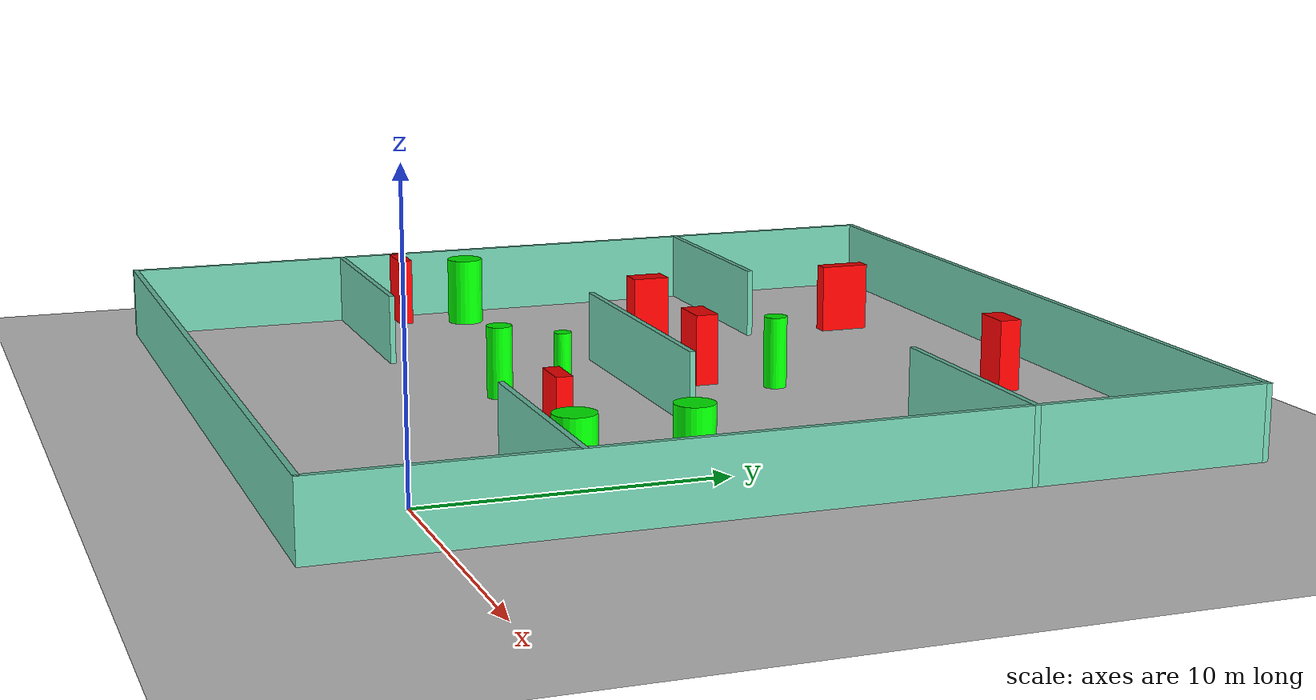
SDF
<sdf version="1.7">
 <world name="default">
  <light name="sun" type="directional">
   <pose>0 0 10 0 -0 0</pose>
   <diffuse>0.8 0.8 0.8 1</diffuse>
   <specular>0.2 0.2 0.2 1</specular>
   <attenuation>
    <range>1000</range>
    <constant>0.9</constant>
    <linear>0.01</linear>
    <quadratic>0.001</quadratic>
   </attenuation>
   <direction>-0.5 0.1 -0.9</direction>
   <spot><inner_angle>0</inner_angle><outer_angle>0</outer_angle><falloff>0</falloff></spot>
  </light>
  <model name="ground_plane">
   <static>1</static>
   <link name="link">
    <collision name="collision">
     <geometry><plane><normal>0 0 1</normal><size>100 100</size></plane></geometry>
     <surface>
      <contact><collide_bitmask>65535</collide_bitmask></contact>
      <friction><ode><mu>100</mu><mu2>50</mu2></ode></friction>
     </surface>
    </collision>
    <visual name="visual">
     <cast_shadows>0</cast_shadows>
     <geometry><plane><normal>0 0 1</normal><size>100 100</size></plane></geometry>
     <material>
      <script><uri>file://media/materials/scripts/gazebo.material</uri><name>Gazebo/Grey</name></script>
     </material>
    </visual>
   </link>
  </model>
  <gravity>0 0 -9.8</gravity>
  <magnetic_field>6e-06 2.3e-05 -4.2e-05</magnetic_field>
  <atmosphere type="adiabatic"/>
  <physics type="ode">
   <max_step_size>0.001</max_step_size>
   <real_time_factor>1</real_time_factor>
   <real_time_update_rate>1000</real_time_update_rate>
  </physics>
  <scene><ambient>0.4 0.4 0.4 1</ambient><background>0.7 0.7 0.7 1</background><shadows>1</shadows></scene>
  <spherical_coordinates>
   <surface_model>EARTH_WGS84</surface_model>
   <latitude_deg>0</latitude_deg>
   <longitude_deg>0</longitude_deg>
   <elevation>0</elevation>
   <heading_deg>0</heading_deg>
  </spherical_coordinates>
  <model name="my_base_walls">
   <link name="Wall_10">
    <collision name="Wall_10_Collision">
     <geometry><box><size>8.2 0.2 2.5</size></box></geometry>
     <pose>0 0 1.25 0 -0 0</pose>
    </collision>
    <visual name="Wall_10_Visual">
     <pose>0 0 1.25 0 -0 0</pose>
     <geometry><box><size>8.2 0.2 2.5</size></box></geometry>
     <material>
      <script><uri>file://media/materials/scripts/gazebo.material</uri><name>Gazebo/Grey</name></script>
      <ambient>0.435294 0.796078 0.67451 1</ambient>
     </material>
     <meta><layer>0</layer></meta>
    </visual>
    <pose>-11 -7 0 0 -0 0</pose>
   </link>
   <link name="Wall_12">
    <collision name="Wall_12_Collision">
     <geometry><box><size>8.2 0.2 2.5</size></box></geometry>
     <pose>0 0 1.25 0 -0 0</pose>
    </collision>
    <visual name="Wall_12_Visual">
     <pose>0 0 1.25 0 -0 0</pose>
     <geometry><box><size>8.2 0.2 2.5</size></box></geometry>
     <material>
      <script><uri>file://media/materials/scripts/gazebo.material</uri><name>Gazebo/Grey</name></script>
      <ambient>0.435294 0.796078 0.67451 1</ambient>
     </material>
     <meta><layer>0</layer></meta>
    </visual>
    <pose>-11 7 0 0 -0 0</pose>
   </link>
   <link name="Wall_14">
    <collision name="Wall_14_Collision">
     <geometry><box><size>8.2 0.2 2.5</size></box></geometry>
     <pose>0 0 1.25 0 -0 0</pose>
    </collision>
    <visual name="Wall_14_Visual">
     <pose>0 0 1.25 0 -0 0</pose>
     <geometry><box><size>8.2 0.2 2.5</size></box></geometry>
     <material>
      <script><uri>file://media/materials/scripts/gazebo.material</uri><name>Gazebo/Grey</name></script>
      <ambient>0.435294 0.796078 0.67451 1</ambient>
     </material>
     <meta><layer>0</layer></meta>
    </visual>
    <pose>11 7 0 0 -0 3.14159</pose>
   </link>
   <link name="Wall_16">
    <collision name="Wall_16_Collision">
     <geometry><box><size>10.2 0.2 2.5</size></box></geometry>
     <pose>0 0 1.25 0 -0 0</pose>
    </collision>
    <visual name="Wall_16_Visual">
     <pose>0 0 1.25 0 -0 0</pose>
     <geometry><box><size>10.2 0.2 2.5</size></box></geometry>
     <material>
      <script><uri>file://media/materials/scripts/gazebo.material</uri><name>Gazebo/Grey</name></script>
      <ambient>0.435294 0.796078 0.67451 1</ambient>
     </material>
     <meta><layer>0</layer></meta>
    </visual>
    <pose>0 0 0 0 -0 3.14159</pose>
   </link>
   <link name="Wall_2">
    <collision name="Wall_2_Collision">
     <geometry><box><size>30.2 0.2 2.5</size></box></geometry>
     <pose>0 0 1.25 0 -0 0</pose>
    </collision>
    <visual name="Wall_2_Visual">
     <pose>0 0 1.25 0 -0 0</pose>
     <geometry><box><size>30.2 0.2 2.5</size></box></geometry>
     <material>
      <script><uri>file://media/materials/scripts/gazebo.material</uri><name>Gazebo/Grey</name></script>
      <ambient>0.435294 0.796078 0.67451 1</ambient>
     </material>
     <meta><layer>0</layer></meta>
    </visual>
    <pose>0 -15 0 0 -0 3.14159</pose>
   </link>
   <link name="Wall_3">
    <collision name="Wall_3_Collision">
     <geometry><box><size>30.2 0.2 2.5</size></box></geometry>
     <pose>0 0 1.25 0 -0 0</pose>
    </collision>
    <visual name="Wall_3_Visual">
     <pose>0 0 1.25 0 -0 0</pose>
     <geometry><box><size>30.2 0.2 2.5</size></box></geometry>
     <material>
      <script><uri>file://media/materials/scripts/gazebo.material</uri><name>Gazebo/Grey</name></script>
      <ambient>0.435294 0.796078 0.67451 1</ambient>
     </material>
     <meta><layer>0</layer></meta>
    </visual>
    <pose>-15 0 0 0 -0 1.5708</pose>
   </link>
   <link name="Wall_4">
    <collision name="Wall_4_Collision">
     <geometry><box><size>30.2 0.2 2.5</size></box></geometry>
     <pose>0 0 1.25 0 -0 0</pose>
    </collision>
    <visual name="Wall_4_Visual">
     <pose>0 0 1.25 0 -0 0</pose>
     <geometry><box><size>30.2 0.2 2.5</size></box></geometry>
     <material>
      <script><uri>file://media/materials/scripts/gazebo.material</uri><name>Gazebo/Grey</name></script>
      <ambient>0.435294 0.796078 0.67451 1</ambient>
     </material>
     <meta><layer>0</layer></meta>
    </visual>
    <pose>0 15 0 0 -0 0</pose>
   </link>
   <link name="Wall_6">
    <collision name="Wall_6_Collision">
     <geometry><box><size>30.2 0.2 2.5</size></box></geometry>
     <pose>0 0 1.25 0 -0 0</pose>
    </collision>
    <visual name="Wall_6_Visual">
     <pose>0 0 1.25 0 -0 0</pose>
     <geometry><box><size>30.2 0.2 2.5</size></box></geometry>
     <material>
      <script><uri>file://media/materials/scripts/gazebo.material</uri><name>Gazebo/Grey</name></script>
      <ambient>0.435294 0.796078 0.67451 1</ambient>
     </material>
     <meta><layer>0</layer></meta>
    </visual>
    <pose>15 0 0 0 -0 1.5708</pose>
   </link>
   <link name="Wall_8">
    <collision name="Wall_8_Collision">
     <geometry><box><size>8.2 0.2 2.5</size></box></geometry>
     <pose>0 0 1.25 0 -0 0</pose>
    </collision>
    <visual name="Wall_8_Visual">
     <pose>0 0 1.25 0 -0 0</pose>
     <geometry><box><size>8.2 0.2 2.5</size></box></geometry>
     <material>
      <script><uri>file://media/materials/scripts/gazebo.material</uri><name>Gazebo/Grey</name></script>
      <ambient>0.435294 0.796078 0.67451 1</ambient>
     </material>
     <meta><layer>0</layer></meta>
    </visual>
    <pose>11 -7 0 0 -0 3.14159</pose>
   </link>
   <static>1</static>
   <pose>-11 11 0 0 -0 0</pose>
  </model>
  <model name="cylinder1">
   <static>1</static>
   <link name="link">
    <inertial>
     <mass>1</mass>
     <inertia><ixx>0.5</ixx><ixy>0</ixy><ixz>0</ixz><iyy>0.5</iyy><iyz>0</iyz><izz>1</izz></inertia>
    </inertial>
    <collision name="collision">
     <geometry><cylinder><radius>0.6507989142733528</radius><length>2.5</length></cylinder></geometry>
    </collision>
    <visual name="visual">
     <geometry><cylinder><radius>0.6507989142733528</radius><length>2.5</length></cylinder></geometry>
     <material>
      <ambient>0 1 0 1</ambient>
      <diffuse>0 1 0 1</diffuse>
      <specular>0.1 0.1 0.1 1</specular>
      <emissive>0 0 0 0</emissive>
     </material>
    </visual>
   </link>
   <pose>0.3528978334856454 8.644714014568695 1.25 0 0 0</pose>
  </model>
  <model name="cylinder2">
   <static>1</static>
   <link name="link">
    <inertial>
     <mass>1</mass>
     <inertia><ixx>0.5</ixx><ixy>0</ixy><ixz>0</ixz><iyy>0.5</iyy><iyz>0</iyz><izz>1</izz></inertia>
    </inertial>
    <collision name="collision">
     <geometry><cylinder><radius>0.301206878153961</radius><length>2.5</length></cylinder></geometry>
    </collision>
    <visual name="visual">
     <geometry><cylinder><radius>0.301206878153961</radius><length>2.5</length></cylinder></geometry>
     <material>
      <ambient>0 1 0 1</ambient>
      <diffuse>0 1 0 1</diffuse>
      <specular>0.1 0.1 0.1 1</specular>
      <emissive>0 0 0 0</emissive>
     </material>
    </visual>
   </link>
   <pose>-10.127057432849568 7.949618367787451 1.25 0 0 0</pose>
  </model>
  <model name="cylinder3">
   <static>1</static>
   <link name="link">
    <inertial>
     <mass>1</mass>
     <inertia><ixx>0.5</ixx><ixy>0</ixy><ixz>0</ixz><iyy>0.5</iyy><iyz>0</iyz><izz>1</izz></inertia>
    </inertial>
    <collision name="collision">
     <geometry><cylinder><radius>0.6896567894852345</radius><length>2.5</length></cylinder></geometry>
    </collision>
    <visual name="visual">
     <geometry><cylinder><radius>0.6896567894852345</radius><length>2.5</length></cylinder></geometry>
     <material>
      <ambient>0 1 0 1</ambient>
      <diffuse>0 1 0 1</diffuse>
      <specular>0.1 0.1 0.1 1</specular>
      <emissive>0 0 0 0</emissive>
     </material>
    </visual>
   </link>
   <pose>0.25262276315882914 4.939085595362908 1.25 0 0 0</pose>
  </model>
  <model name="cylinder4">
   <static>1</static>
   <link name="link">
    <inertial>
     <mass>1</mass>
     <inertia><ixx>0.5</ixx><ixy>0</ixy><ixz>0</ixz><iyy>0.5</iyy><iyz>0</iyz><izz>1</izz></inertia>
    </inertial>
    <collision name="collision">
     <geometry><cylinder><radius>0.6623784714559192</radius><length>2.5</length></cylinder></geometry>
    </collision>
    <visual name="visual">
     <geometry><cylinder><radius>0.6623784714559192</radius><length>2.5</length></cylinder></geometry>
     <material>
      <ambient>0 1 0 1</ambient>
      <diffuse>0 1 0 1</diffuse>
      <specular>0.1 0.1 0.1 1</specular>
      <emissive>0 0 0 0</emissive>
     </material>
    </visual>
   </link>
   <pose>-24.083730826857597 8.453743405779624 1.25 0 0 0</pose>
  </model>
  <model name="cylinder5">
   <static>1</static>
   <link name="link">
    <inertial>
     <mass>1</mass>
     <inertia><ixx>0.5</ixx><ixy>0</ixy><ixz>0</ixz><iyy>0.5</iyy><iyz>0</iyz><izz>1</izz></inertia>
    </inertial>
    <collision name="collision">
     <geometry><cylinder><radius>0.44137672273184037</radius><length>2.5</length></cylinder></geometry>
    </collision>
    <visual name="visual">
     <geometry><cylinder><radius>0.44137672273184037</radius><length>2.5</length></cylinder></geometry>
     <material>
      <ambient>0 1 0 1</ambient>
      <diffuse>0 1 0 1</diffuse>
      <specular>0.1 0.1 0.1 1</specular>
      <emissive>0 0 0 0</emissive>
     </material>
    </visual>
   </link>
   <pose>-11.846521303247366 6.242734092239944 1.25 0 0 0</pose>
  </model>
  <model name="cylinder6">
   <static>1</static>
   <link name="link">
    <inertial>
     <mass>1</mass>
     <inertia><ixx>0.5</ixx><ixy>0</ixy><ixz>0</ixz><iyy>0.5</iyy><iyz>0</iyz><izz>1</izz></inertia>
    </inertial>
    <collision name="collision">
     <geometry><cylinder><radius>0.4030086920210257</radius><length>2.5</length></cylinder></geometry>
    </collision>
    <visual name="visual">
     <geometry><cylinder><radius>0.4030086920210257</radius><length>2.5</length></cylinder></geometry>
     <material>
      <ambient>0 1 0 1</ambient>
      <diffuse>0 1 0 1</diffuse>
      <specular>0.1 0.1 0.1 1</specular>
      <emissive>0 0 0 0</emissive>
     </material>
    </visual>
   </link>
   <pose>-10.03568311054084 15.684731389784716 1.25 0 0 0</pose>
  </model>
  <model name="box1">
   <static>1</static>
   <link name="link">
    <inertial>
     <mass>1</mass>
     <inertia><ixx>0.083</ixx><ixy>0</ixy><ixz>0</ixz><iyy>0.083</iyy><iyz>0</iyz><izz>0.083</izz></inertia>
    </inertial>
    <collision name="collision">
     <geometry><box><size>1.4189325895963325 0.5524902966189846 2.5</size></box></geometry>
    </collision>
    <visual name="visual">
     <geometry><box><size>1.4189325895963325 0.5524902966189846 2.5</size></box></geometry>
     <material>
      <ambient>1 0 0 1</ambient>
      <diffuse>1 0 0 1</diffuse>
      <specular>0.1 0.1 0.1 1</specular>
      <emissive>0 0 0 0</emissive>
     </material>
    </visual>
    <sensor name="my_contact" type="contact">
     <contact><collision>box_collision</collision><topic>__default_topic__</topic></contact>
    </sensor>
   </link>
   <pose>-4.722768689758539 6.032673720372033 1.25 0 0 0</pose>
  </model>
  <model name="box2">
   <static>1</static>
   <link name="link">
    <inertial>
     <mass>1</mass>
     <inertia><ixx>0.083</ixx><ixy>0</ixy><ixz>0</ixz><iyy>0.083</iyy><iyz>0</iyz><izz>0.083</izz></inertia>
    </inertial>
    <collision name="collision">
     <geometry><box><size>1.3625664439986294 0.7646755315843844 2.5</size></box></geometry>
    </collision>
    <visual name="visual">
     <geometry><box><size>1.3625664439986294 0.7646755315843844 2.5</size></box></geometry>
     <material>
      <ambient>1 0 0 1</ambient>
      <diffuse>1 0 0 1</diffuse>
      <specular>0.1 0.1 0.1 1</specular>
      <emissive>0 0 0 0</emissive>
     </material>
    </visual>
    <sensor name="my_contact" type="contact">
     <contact><collision>box_collision</collision><topic>__default_topic__</topic></contact>
    </sensor>
   </link>
   <pose>-7.306185248063315 23.0097368388171 1.25 0 0 0</pose>
  </model>
  <model name="box3">
   <static>1</static>
   <link name="link">
    <inertial>
     <mass>1</mass>
     <inertia><ixx>0.083</ixx><ixy>0</ixy><ixz>0</ixz><iyy>0.083</iyy><iyz>0</iyz><izz>0.083</izz></inertia>
    </inertial>
    <collision name="collision">
     <geometry><box><size>0.5555832172579841 1.8075350927193032 2.5</size></box></geometry>
    </collision>
    <visual name="visual">
     <geometry><box><size>0.5555832172579841 1.8075350927193032 2.5</size></box></geometry>
     <material>
      <ambient>1 0 0 1</ambient>
      <diffuse>1 0 0 1</diffuse>
      <specular>0.1 0.1 0.1 1</specular>
      <emissive>0 0 0 0</emissive>
     </material>
    </visual>
    <sensor name="my_contact" type="contact">
     <contact><collision>box_collision</collision><topic>__default_topic__</topic></contact>
    </sensor>
   </link>
   <pose>-17.867376737847053 21.835545821649443 1.25 0 0 0</pose>
  </model>
  <model name="box4">
   <static>1</static>
   <link name="link">
    <inertial>
     <mass>1</mass>
     <inertia><ixx>0.083</ixx><ixy>0</ixy><ixz>0</ixz><iyy>0.083</iyy><iyz>0</iyz><izz>0.083</izz></inertia>
    </inertial>
    <collision name="collision">
     <geometry><box><size>0.86261454159744 1.338167472161567 2.5</size></box></geometry>
    </collision>
    <visual name="visual">
     <geometry><box><size>0.86261454159744 1.338167472161567 2.5</size></box></geometry>
     <material>
      <ambient>1 0 0 1</ambient>
      <diffuse>1 0 0 1</diffuse>
      <specular>0.1 0.1 0.1 1</specular>
      <emissive>0 0 0 0</emissive>
     </material>
    </visual>
    <sensor name="my_contact" type="contact">
     <contact><collision>box_collision</collision><topic>__default_topic__</topic></contact>
    </sensor>
   </link>
   <pose>-18.23051077888268 13.956603652695424 1.25 0 0 0</pose>
  </model>
  <model name="box5">
   <static>1</static>
   <link name="link">
    <inertial>
     <mass>1</mass>
     <inertia><ixx>0.083</ixx><ixy>0</ixy><ixz>0</ixz><iyy>0.083</iyy><iyz>0</iyz><izz>0.083</izz></inertia>
    </inertial>
    <collision name="collision">
     <geometry><box><size>1.488137090804181 0.8046460441820311 2.5</size></box></geometry>
    </collision>
    <visual name="visual">
     <geometry><box><size>1.488137090804181 0.8046460441820311 2.5</size></box></geometry>
     <material>
      <ambient>1 0 0 1</ambient>
      <diffuse>1 0 0 1</diffuse>
      <specular>0.1 0.1 0.1 1</specular>
      <emissive>0 0 0 0</emissive>
     </material>
    </visual>
    <sensor name="my_contact" type="contact">
     <contact><collision>box_collision</collision><topic>__default_topic__</topic></contact>
    </sensor>
   </link>
   <pose>-11.747269968443497 13.52884544708963 1.25 0 0 0</pose>
  </model>
  <model name="box6">
   <static>1</static>
   <link name="link">
    <inertial>
     <mass>1</mass>
     <inertia><ixx>0.083</ixx><ixy>0</ixy><ixz>0</ixz><iyy>0.083</iyy><iyz>0</iyz><izz>0.083</izz></inertia>
    </inertial>
    <collision name="collision">
     <geometry><box><size>1.7363391470680956 0.5079606980802782 2.5</size></box></geometry>
    </collision>
    <visual name="visual">
     <geometry><box><size>1.7363391470680956 0.5079606980802782 2.5</size></box></geometry>
     <material>
      <ambient>1 0 0 1</ambient>
      <diffuse>1 0 0 1</diffuse>
      <specular>0.1 0.1 0.1 1</specular>
      <emissive>0 0 0 0</emissive>
     </material>
    </visual>
    <sensor name="my_contact" type="contact">
     <contact><collision>box_collision</collision><topic>__default_topic__</topic></contact>
    </sensor>
   </link>
   <pose>-25.27226701986236 6.1452018785731966 1.25 0 0 0</pose>
  </model>
 </world>
</sdf>
